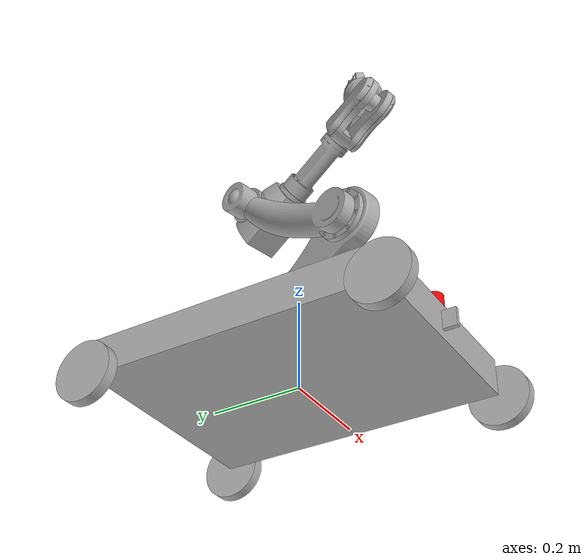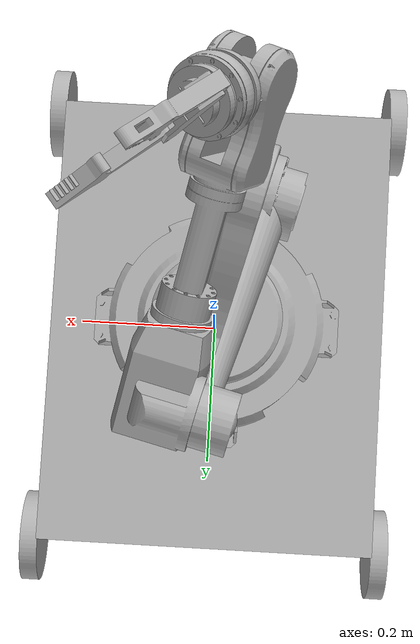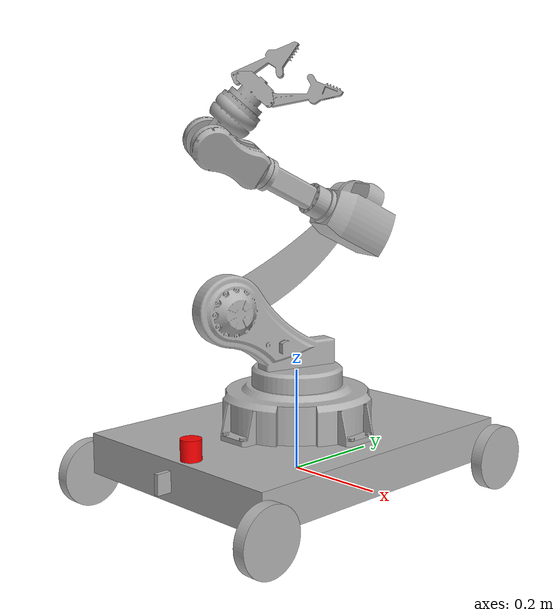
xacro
<?xml version="1.0" ?>
<robot name="assem1" xmlns:xacro="http://www.ros.org/wiki/xacro">

<xacro:include filename="$(find assem1_description)/urdf/materials.xacro" />
<xacro:include filename="$(find assem1_description)/urdf/assem1.gazebo" />
<xacro:include filename="$(find assem1_description)/urdf/lidar.xacro"/>
<xacro:include filename="$(find assem1_description)/urdf/camera.xacro"/>
<link name="base_link">
  <inertial>
    <origin xyz="-0.0030632357752009374 0.003088727731188072 0.045918953287975475" rpy="0 0 0"/>
    <mass value="192.92159999999998"/>
    <inertia ixx="6.687949" iyy="3.806986" izz="10.289152" ixy="-0.0" iyz="0.0" ixz="0.0"/>
  </inertial>
  <visual>
    <origin xyz="0 0 0" rpy="0 0 0"/>
    <geometry>
      <mesh filename="file://$(find assem1_description)/meshes/base_link.STL" scale="0.001 0.001 0.001"/>
    </geometry>
    <material name="silver"/>
  </visual>
  <collision>
    <origin xyz="0 0 0" rpy="0 0 0"/>
    <geometry>
      <mesh filename="file://$(find assem1_description)/meshes/base_link.STL" scale="0.001 0.001 0.001"/>
    </geometry>
  </collision>
</link>

<joint name="base_footprint_joint" type="fixed">
  <parent link="base_link"/>
  <child link="base_footprint"/>
  <origin xyz="0 0 0" rpy="0.0 0.0 0.0"/>
</joint>

<link name="base_footprint">
</link>

<link name="Part2_1">
  <inertial>
    <origin xyz="-0.010911311293864655 -0.05529969992583282 0.06139654458639404" rpy="0 0 0"/>
    <mass value="17.701233959851926"/>
    <inertia ixx="0.178207" iyy="0.09469" izz="0.124657" ixy="-0.017913" iyz="0.0684" ixz="0.013711"/>
  </inertial>
  <visual>
    <origin xyz="0.003063 -0.003089 -0.190919" rpy="0 0 0"/>
    <geometry>
      <mesh filename="file://$(find assem1_description)/meshes/Part2_1.STL" scale="0.001 0.001 0.001"/>
    </geometry>
    <material name="silver"/>
  </visual>
  <collision>
    <origin xyz="0.003063 -0.003089 -0.190919" rpy="0 0 0"/>
    <geometry>
      <mesh filename="file://$(find assem1_description)/meshes/Part2_1.STL" scale="0.001 0.001 0.001"/>
    </geometry>
  </collision>
</link>

<link name="Part3_1">
  <inertial>
    <origin xyz="-0.005182507077487054 0.12838435386256494 0.0717552847232073" rpy="0 0 0"/>
    <mass value="7.22749176500749"/>
    <inertia ixx="0.137207" iyy="0.050406" izz="0.100334" ixy="-0.022977" iyz="-0.059968" ixz="-0.014619"/>
  </inertial>
  <visual>
    <origin xyz="0.038331 0.142706 -0.330919" rpy="0 0 0"/>
    <geometry>
      <mesh filename="file://$(find assem1_description)/meshes/Part3_1.STL" scale="0.001 0.001 0.001"/>
    </geometry>
    <material name="silver"/>
  </visual>
  <collision>
    <origin xyz="0.038331 0.142706 -0.330919" rpy="0 0 0"/>
    <geometry>
      <mesh filename="file://$(find assem1_description)/meshes/Part3_1.STL" scale="0.001 0.001 0.001"/>
    </geometry>
  </collision>
</link>

<link name="Part4_1">
  <inertial>
    <origin xyz="0.011724639975586672 -0.06227515847861945 -0.015690080281824947" rpy="0 0 0"/>
    <mass value="11.236916808319004"/>
    <inertia ixx="0.064352" iyy="0.024344" izz="0.055655" ixy="-0.009096" iyz="0.017391" ixz="0.004684"/>
  </inertial>
  <visual>
    <origin xyz="-0.030387 -0.141374 -0.523471" rpy="0 0 0"/>
    <geometry>
      <mesh filename="file://$(find assem1_description)/meshes/Part4_1.STL" scale="0.001 0.001 0.001"/>
    </geometry>
    <material name="silver"/>
  </visual>
  <collision>
    <origin xyz="-0.030387 -0.141374 -0.523471" rpy="0 0 0"/>
    <geometry>
      <mesh filename="file://$(find assem1_description)/meshes/Part4_1.STL" scale="0.001 0.001 0.001"/>
    </geometry>
  </collision>
</link>

<link name="Part5_1">
  <inertial>
    <origin xyz="-0.019119574882464244 -0.07904125203019088 0.04076278935412059" rpy="0 0 0"/>
    <mass value="4.564272686214756"/>
    <inertia ixx="0.011004" iyy="0.006391" izz="0.010732" ixy="-0.000969" iyz="0.002857" ixz="0.001086"/>
  </inertial>
  <visual>
    <origin xyz="-0.004873 0.081066 -0.584516" rpy="0 0 0"/>
    <geometry>
      <mesh filename="file://$(find assem1_description)/meshes/Part5_1.STL" scale="0.001 0.001 0.001"/>
    </geometry>
    <material name="silver"/>
  </visual>
  <collision>
    <origin xyz="-0.004873 0.081066 -0.584516" rpy="0 0 0"/>
    <geometry>
      <mesh filename="file://$(find assem1_description)/meshes/Part5_1.STL" scale="0.001 0.001 0.001"/>
    </geometry>
  </collision>
</link>

<link name="Part7_1">
  <inertial>
    <origin xyz="0.006669159719989541 0.03655129702098897 0.05115457936445622" rpy="0 0 0"/>
    <mass value="2.6622847012153508"/>
    <inertia ixx="0.00266" iyy="0.002593" izz="0.002307" ixy="-0.000183" iyz="-0.00031" ixz="-0.000278"/>
  </inertial>
  <visual>
    <origin xyz="0.003681 0.20663 -0.638292" rpy="0 0 0"/>
    <geometry>
      <mesh filename="file://$(find assem1_description)/meshes/Part7_1.STL" scale="0.001 0.001 0.001"/>
    </geometry>
    <material name="silver"/>
  </visual>
  <collision>
    <origin xyz="0.003681 0.20663 -0.638292" rpy="0 0 0"/>
    <geometry>
      <mesh filename="file://$(find assem1_description)/meshes/Part7_1.STL" scale="0.001 0.001 0.001"/>
    </geometry>
  </collision>
</link>

<link name="Part8_1">
  <inertial>
    <origin xyz="0.002854033391193094 0.0030028641318119997 0.004726285016126597" rpy="0 0 0"/>
    <mass value="0.5986212262936281"/>
    <inertia ixx="0.000282" iyy="0.000294" izz="0.000287" ixy="-9e-06" iyz="1.8e-05" ixz="2.5e-05"/>
  </inertial>
  <visual>
    <origin xyz="-0.023282 0.148493 -0.723368" rpy="0 0 0"/>
    <geometry>
      <mesh filename="file://$(find assem1_description)/meshes/Part8_1.STL" scale="0.001 0.001 0.001"/>
    </geometry>
    <material name="silver"/>
  </visual>
  <collision>
    <origin xyz="-0.023282 0.148493 -0.723368" rpy="0 0 0"/>
    <geometry>
      <mesh filename="file://$(find assem1_description)/meshes/Part8_1.STL" scale="0.001 0.001 0.001"/>
    </geometry>
  </collision>
</link>

<link name="Part9_1">
  <inertial>
    <origin xyz="0.043545764516277764 0.03738600757521744 0.01633233444478477" rpy="0 0 0"/>
    <mass value="0.36097891893203876"/>
    <inertia ixx="0.00023" iyy="0.000306" izz="0.000441" ixy="-0.000207" iyz="-4.8e-05" ixz="-5.4e-05"/>
  </inertial>
  <visual>
    <origin xyz="-0.059773 0.120751 -0.715132" rpy="0 0 0"/>
    <geometry>
      <mesh filename="file://$(find assem1_description)/meshes/Part9_1.STL" scale="0.001 0.001 0.001"/>
    </geometry>
    <material name="silver"/>
  </visual>
  <collision>
    <origin xyz="-0.059773 0.120751 -0.715132" rpy="0 0 0"/>
    <geometry>
      <mesh filename="file://$(find assem1_description)/meshes/Part9_1.STL" scale="0.001 0.001 0.001"/>
    </geometry>
  </collision>
</link>

<link name="Part9_2">
  <inertial>
    <origin xyz="-0.5557827107504087 -0.159452899680161 0.5477674898337425" rpy="0 0 0"/>
    <mass value="0.36097891893203876"/>
    <inertia ixx="0.000272" iyy="0.000319" izz="0.000385" ixy="-0.000181" iyz="-0.000104" ixz="-0.000113"/>
  </inertial>
  <visual>
    <origin xyz="-0.019773 0.1530751 -0.765132" rpy="0 0 0"/>
    <geometry>
      <mesh filename="file://$(find assem1_description)/meshes/Part9_2.STL" scale="0.001 0.001 0.001"/>
    </geometry>
    <material name="silver"/>
  </visual>
  <collision>
    <origin xyz="-0.606893 -0.042637 -0.23854" rpy="0 0 0"/>
    <geometry>
      <mesh filename="file://$(find assem1_description)/meshes/Part9_2.STL" scale="0.001 0.001 0.001"/>
    </geometry>
  </collision>
</link>

<link name="Part1_1">
  <inertial>
    <origin xyz="-2.3577520094197196e-07 -2.7226882862553883e-07 0.039626993198063926" rpy="0 0 0"/>
    <mass value="43.256899010092134"/>
    <inertia ixx="0.25538" iyy="0.25538" izz="0.462403" ixy="-0.0" iyz="0.0" ixz="-0.0"/>
  </inertial>
  <visual>
    <origin xyz="0.003063 -0.003089 -0.085919" rpy="0 0 0"/>
    <geometry>
      <mesh filename="file://$(find assem1_description)/meshes/Part1_1.STL" scale="0.001 0.001 0.001"/>
    </geometry>
    <material name="silver"/>
  </visual>
  <collision>
    <origin xyz="0.003063 -0.003089 -0.085919" rpy="0 0 0"/>
    <geometry>
      <mesh filename="file://$(find assem1_description)/meshes/Part1_1.STL" scale="0.001 0.001 0.001"/>
    </geometry>
  </collision>
</link>

<link name="wheel_v1_1">
  <inertial>
    <origin xyz="0.01249976422479887 -2.722688113299121e-07 -4.671202449065687e-08" rpy="0 0 0"/>
    <mass value="2.604871183678062"/>
    <inertia ixx="0.005503" iyy="0.002887" izz="0.002887" ixy="0.0" iyz="0.0" ixz="-0.0"/>
  </inertial>
  <visual>
    <origin xyz="-0.236937 0.316911 -0.005919" rpy="0 0 0"/>
    <geometry>
      <mesh filename="file://$(find assem1_description)/meshes/wheel_v1_1.STL" scale="0.001 0.001 0.001"/>
    </geometry>
    <material name="silver"/>
  </visual>
  <collision>
    <origin xyz="-0.236937 0.316911 -0.005919" rpy="0 0 0"/>
    <geometry>
      <mesh filename="file://$(find assem1_description)/meshes/wheel_v1_1.STL" scale="0.001 0.001 0.001"/>
    </geometry>
  </collision>
</link>

<link name="wheel_v1__1__1">
  <inertial>
    <origin xyz="0.01249976422479887 -2.7226881249564627e-07 -4.6712024579127764e-08" rpy="0 0 0"/>
    <mass value="2.604871183678062"/>
    <inertia ixx="0.005503" iyy="0.002887" izz="0.002887" ixy="-0.0" iyz="0.0" ixz="-0.0"/>
  </inertial>
  <visual>
    <origin xyz="-0.236937 -0.323089 -0.005919" rpy="0 0 0"/>
    <geometry>
      <mesh filename="file://$(find assem1_description)/meshes/wheel_v1__1__1.STL" scale="0.001 0.001 0.001"/>
    </geometry>
    <material name="silver"/>
  </visual>
  <collision>
    <origin xyz="-0.236937 -0.323089 -0.005919" rpy="0 0 0"/>
    <geometry>
      <mesh filename="file://$(find assem1_description)/meshes/wheel_v1__1__1.STL" scale="0.001 0.001 0.001"/>
    </geometry>
  </collision>
</link>

<link name="wheel_v1__2__1">
  <inertial>
    <origin xyz="-0.012500235775200791 -2.7226881249564627e-07 -4.6712024568719424e-08" rpy="0 0 0"/>
    <mass value="2.604871183678062"/>
    <inertia ixx="0.005503" iyy="0.002887" izz="0.002887" ixy="-0.0" iyz="0.0" ixz="0.0"/>
  </inertial>
  <visual>
    <origin xyz="0.243063 -0.323089 -0.005919" rpy="0 0 0"/>
    <geometry>
      <mesh filename="file://$(find assem1_description)/meshes/wheel_v1__2__1.STL" scale="0.001 0.001 0.001"/>
    </geometry>
    <material name="silver"/>
  </visual>
  <collision>
    <origin xyz="0.243063 -0.323089 -0.005919" rpy="0 0 0"/>
    <geometry>
      <mesh filename="file://$(find assem1_description)/meshes/wheel_v1__2__1.STL" scale="0.001 0.001 0.001"/>
    </geometry>
  </collision>
</link>

<link name="wheel_v1__3__1">
  <inertial>
    <origin xyz="-0.012500235775200791 -2.722688113299121e-07 -4.67120244264721e-08" rpy="0 0 0"/>
    <mass value="2.604871183678062"/>
    <inertia ixx="0.005503" iyy="0.002887" izz="0.002887" ixy="0.0" iyz="0.0" ixz="0.0"/>
  </inertial>
  <visual>
    <origin xyz="0.243063 0.316911 -0.005919" rpy="0 0 0"/>
    <geometry>
      <mesh filename="file://$(find assem1_description)/meshes/wheel_v1__3__1.STL" scale="0.001 0.001 0.001"/>
    </geometry>
    <material name="silver"/>
  </visual>
  <collision>
    <origin xyz="0.243063 0.316911 -0.005919" rpy="0 0 0"/>
    <geometry>
      <mesh filename="file://$(find assem1_description)/meshes/wheel_v1__3__1.STL" scale="0.001 0.001 0.001"/>
    </geometry>
  </collision>
</link>

<joint name="Revolute 1" type="continuous">
  <origin xyz="0.0 0.0 0.105" rpy="0 0 0"/>
  <parent link="Part1_1"/>
  <child link="Part2_1"/>
  <axis xyz="-0.0 -0.0 1.0"/>
</joint>

<joint name="Revolute 2" type="revolute">
  <origin xyz="-0.035268 -0.145795 0.14" rpy="0 0 0"/>
  <parent link="Part2_1"/>
  <child link="Part3_1"/>
  <axis xyz="-0.971968 0.235115 0.0"/>
  <limit upper="1.047198" lower="-1.745329" effort="100" velocity="100"/>
</joint>

<joint name="Revolute 3" type="revolute">
  <origin xyz="0.068718 0.28408 0.192552" rpy="0 0 0"/>
  <parent link="Part3_1"/>
  <child link="Part4_1"/>
  <axis xyz="0.971968 -0.235115 -0.0"/>
  <limit upper="1.047198" lower="-1.047198" effort="100" velocity="100"/>
</joint>

<joint name="Revolute 4" type="continuous">
  <origin xyz="-0.025514 -0.22244 0.061045" rpy="0 0 0"/>
  <parent link="Part4_1"/>
  <child link="Part5_1"/>
  <axis xyz="-0.210187 -0.868915 0.448116"/>
</joint>

<joint name="Revolute 5" type="revolute">
  <origin xyz="-0.008554 -0.125564 0.053776" rpy="0 0 0"/>
  <parent link="Part5_1"/>
  <child link="Part7_1"/>
  <axis xyz="-0.880921 0.36712 0.298667"/>
  <limit upper="1.745329" lower="-1.745329" effort="100" velocity="100"/>
</joint>

<joint name="Revolute 6" type="continuous">
  <origin xyz="0.026963 0.058137 0.085076" rpy="0 0 0"/>
  <parent link="Part7_1"/>
  <child link="Part8_1"/>
  <axis xyz="0.454085 0.47782 0.751993"/>
</joint>

<joint name="Revolute 7" type="revolute">
  <origin xyz="0.036491 0.027742 -0.008236" rpy="0 0 0"/>
  <parent link="Part8_1"/>
  <child link="Part9_1"/>
  <axis xyz="0.617894 -0.776961 0.120574"/>
  <limit upper="0.349066" lower="-0.349066" effort="100" velocity="100"/>
</joint>

<joint name="Revolute 8" type="revolute">
  <origin xyz="-0.01 -0.01 0.04" rpy="0 0 0"/>
  <parent link="Part8_1"/>
  <child link="Part9_2"/>
  <axis xyz="0.617894 -0.776961 0.120574"/>
  <limit upper="1.396263" lower="0.0" effort="100" velocity="100"/>
</joint>

<joint name="Rigid 9" type="fixed">
  <origin xyz="-0.003063 0.003089 0.085919" rpy="0 0 0"/>
  <parent link="base_link"/>
  <child link="Part1_1"/>
</joint>

<joint name="Revolute 10" type="continuous">
  <origin xyz="0.236937 -0.316911 0.005919" rpy="0 0 0"/>
  <parent link="base_link"/>
  <child link="wheel_v1_1"/>
  <axis xyz="1.0 -0.0 -0.0"/>
</joint>

<joint name="Revolute 11" type="continuous">
  <origin xyz="0.236937 0.323089 0.005919" rpy="0 0 0"/>
  <parent link="base_link"/>
  <child link="wheel_v1__1__1"/>
  <axis xyz="1.0 -0.0 -0.0"/>
</joint>

<joint name="Revolute 12" type="continuous">
  <origin xyz="-0.243063 0.323089 0.005919" rpy="0 0 0"/>
  <parent link="base_link"/>
  <child link="wheel_v1__2__1"/>
  <axis xyz="1.0 0.0 0.0"/>
</joint>

<joint name="Revolute 13" type="continuous">
  <origin xyz="-0.243063 -0.316911 0.005919" rpy="0 0 0"/>
  <parent link="base_link"/>
  <child link="wheel_v1__3__1"/>
  <axis xyz="1.0 0.0 0.0"/>
</joint>

</robot>

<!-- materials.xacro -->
<robot xmlns:xacro="http://www.ros.org/wiki/xacro" >

<material name="silver">
  <color rgba="0.700 0.700 0.700 1.000"/>
</material>

<material name="red">
  <color rgba="1.0 0.0 0.0 1.0"/>
</material>

</robot>

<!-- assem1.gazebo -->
<robot xmlns:xacro="http://www.ros.org/wiki/xacro">

  <xacro:property name="body_color" value="Gazebo/Silver" />

  <gazebo>
    <plugin name="diff_drive" filename="libgazebo_ros_diff_drive.so">

      <!-- Wheel Information -->
      <num_wheel_pairs>2</num_wheel_pairs>
      <left_joint>Revolute 10</left_joint>
      <left_joint>Revolute 11</left_joint>
      <right_joint>Revolute 12</right_joint>
      <right_joint>Revolute 13</right_joint>
      <wheel_separation>0.64</wheel_separation>
      <wheel_diameter>0.1</wheel_diameter>

      <!-- Limits -->
      <max_wheel_torque>2000</max_wheel_torque>
      <max_wheel_acceleration>100.0</max_wheel_acceleration>

      <!-- Output -->
      <odometry_frame>odom</odometry_frame>
      <robot_base_frame>base_link</robot_base_frame>

      <publish_odom>true</publish_odom>
      <publish_odom_tf>true</publish_odom_tf>
      <publish_wheel_tf>true</publish_wheel_tf>

    </plugin>
  </gazebo>

  <gazebo reference="base_link">
    <material>${body_color}</material>
    <mu1>0.2</mu1>
    <mu2>0.2</mu2>
    <selfCollide>true</selfCollide>
    <gravity>true</gravity>
  </gazebo>

  <gazebo reference="Part2_1">
    <material>${body_color}</material>
    <mu1>0.2</mu1>
    <mu2>0.2</mu2>
    <selfCollide>true</selfCollide>
  </gazebo>

  <gazebo reference="Part3_1">
    <material>${body_color}</material>
    <mu1>0.2</mu1>
    <mu2>0.2</mu2>
    <selfCollide>true</selfCollide>
  </gazebo>

  <gazebo reference="Part4_1">
    <material>${body_color}</material>
    <mu1>0.2</mu1>
    <mu2>0.2</mu2>
    <selfCollide>true</selfCollide>
  </gazebo>

  <gazebo reference="Part5_1">
    <material>${body_color}</material>
    <mu1>0.2</mu1>
    <mu2>0.2</mu2>
    <selfCollide>true</selfCollide>
  </gazebo>

  <gazebo reference="Part7_1">
    <material>${body_color}</material>
    <mu1>0.2</mu1>
    <mu2>0.2</mu2>
    <selfCollide>true</selfCollide>
  </gazebo>

  <gazebo reference="Part8_1">
    <material>${body_color}</material>
    <mu1>0.2</mu1>
    <mu2>0.2</mu2>
    <selfCollide>true</selfCollide>
  </gazebo>

  <gazebo reference="Part9_1">
    <material>${body_color}</material>
    <mu1>0.2</mu1>
    <mu2>0.2</mu2>
    <selfCollide>true</selfCollide>
  </gazebo>

  <gazebo reference="Part9_2">
    <material>${body_color}</material>
    <mu1>0.2</mu1>
    <mu2>0.2</mu2>
    <selfCollide>true</selfCollide>
  </gazebo>

  <gazebo reference="Part1_1">
    <material>${body_color}</material>
    <mu1>0.2</mu1>
    <mu2>0.2</mu2>
    <selfCollide>true</selfCollide>
  </gazebo>

  <gazebo reference="wheel_v1_1">
    <material>${body_color}</material>
    <mu1>0.2</mu1>
    <mu2>0.2</mu2>
    <selfCollide>true</selfCollide>
  </gazebo>

  <gazebo reference="wheel_v1__1__1">
    <material>${body_color}</material>
    <mu1>0.2</mu1>
    <mu2>0.2</mu2>
    <selfCollide>true</selfCollide>
  </gazebo>

  <gazebo reference="wheel_v1__2__1">
    <material>${body_color}</material>
    <mu1>0.2</mu1>
    <mu2>0.2</mu2>
    <selfCollide>true</selfCollide>
  </gazebo>

  <gazebo reference="wheel_v1__3__1">
    <material>${body_color}</material>
    <mu1>0.2</mu1>
    <mu2>0.2</mu2>
    <selfCollide>true</selfCollide>
  </gazebo>

  <gazebo reference="camera_1">
    <material>${body_color}</material>
    <mu1>0.2</mu1>
    <mu2>0.2</mu2>
    <selfCollide>true</selfCollide>
  </gazebo>

  <gazebo reference="lidar_1">
    <material>Gazebo/Red</material>
    <mu1>0.2</mu1>
    <mu2>0.2</mu2>
    <selfCollide>true</selfCollide>
  </gazebo>

</robot>

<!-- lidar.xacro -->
<robot xmlns:xacro="http://www.ros.org/wiki/xacro" >

    <joint name="Rigid 17" type="fixed">
        <origin xyz="-0.006126 -0.313823 0.091838" rpy="0 0 -0.75"/>
        <parent link="base_link"/>
        <child link="lidar_1"/>
      </joint>

    <link name="lidar_1">
        <inertial>
          <origin xyz="0.003062764224799069 0.036911727731188615 0.014080953287975456" rpy="0 0 0"/>
          <mass value="0.3945840372908781"/>
          <inertia ixx="9.2e-05" iyy="9.2e-05" izz="7.9e-05" ixy="-0.0" iyz="-0.0" ixz="0.0"/>
        </inertial>
        <visual>
          <origin xyz="0.006126 0.313823 -0.091838" rpy="0 0 0"/>
          <geometry>
            <mesh filename="file://$(find assem1_description)/meshes/lidar_1.STL" scale="0.001 0.001 0.001"/>
          </geometry>
          <material name="red"/>
        </visual>
        <collision>
          <origin xyz="0.006126 0.313823 -0.091838" rpy="0 0 0"/>
          <geometry>
            <mesh filename="file://$(find assem1_description)/meshes/lidar_1.STL" scale="0.001 0.001 0.001"/>
          </geometry>
        </collision>
      </link>

    <gazebo reference="lidar_1">
        <material>Gazebo/Red</material>

        <sensor name="laser" type="ray">
            <pose>true</pose>
            <visualize>true</visualize>
            <update_rate>10</update_rate>
            <ray>
                <scan>
                    <horizontal>
                        <samples>360</samples>
                        <resolution>1</resolution>
                        <min_angle>-3.14</min_angle>
                        <max_angle>1.57</max_angle>
                    </horizontal>
                </scan>
                <range>
                    <min>0.3</min>
                    <max>12</max>
                    <resolution>0.01</resolution>
                </range>
            </ray>
            <plugin name="laser_controller" filename="libgazebo_ros_ray_sensor.so">
                <ros>
                    <argument>~/out:=scan</argument>
                </ros>
                <output_type>sensor_msgs/LaserScan</output_type>
                <frame_name>lidar_1</frame_name>
            </plugin>
        </sensor>
    </gazebo>
</robot>

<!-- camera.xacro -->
<robot xmlns:xacro="http://www.ros.org/wiki/xacro" >

    <joint name="Rigid 16" type="fixed">
        <origin xyz="-0.003063 -0.316911 0.045919" rpy="0 0 ${-pi/2}"/>
        <parent link="base_link"/>
        <child link="camera_1"/>
    </joint>

    <link name="camera_1">
    <inertial>
        <origin xyz="-2.3577520093243098e-07 -0.005000272268811223 -4.671202445682976e-08" rpy="0 0 0"/>
        <mass value="0.18839999999999998"/>
        <inertia ixx="2.7e-05" iyy="8.2e-05" izz="5.8e-05" ixy="-0.0" iyz="-0.0" ixz="0.0"/>
    </inertial>
    <visual>
        <origin xyz="0.003063 0.316911 -0.045919" rpy="0 0 0"/>
        <geometry>
        <mesh filename="file://$(find assem1_description)/meshes/camera_1.STL" scale="0.001 0.001 0.001"/>
        </geometry>
        <material name="silver"/>
    </visual>
    <collision>
        <origin xyz="0.003063 0.316911 -0.045919" rpy="0 0 0"/>
        <geometry>
        <mesh filename="file://$(find assem1_description)/meshes/camera_1.STL" scale="0.001 0.001 0.001"/>
        </geometry>
    </collision>
    </link>

    <link name="camera_link_optical">
    </link>

    <joint name="camera_optical_joint" type="fixed">
        <origin xyz="0 0 0" rpy="${-pi/2} 0 ${-pi/2}"/>
        <parent link="camera_1"/>
        <child link="camera_link_optical"/>
    </joint>

    <gazebo reference="camera_1">
        <material>Gazebo/Red</material>

        <sensor name="camera" type="camera">
            <pose>0 0 0</pose>
            <visualize>true</visualize>
            <update_rate>10</update_rate>
            <camera>
                <horizontal_fov>1.089</horizontal_fov>
                <image>
                    <format>R8G8B8</format>
                    <width>640</width>
                    <height>480</height>
                </image>
                <clip>
                    <near>0.05</near>
                    <far>8.0</far>
                </clip>
            </camera>
            <plugin name="camera_controller" filename="libgazebo_ros_camera.so">
                <frame_name>camera_link_optical</frame_name>
            </plugin>
        </sensor>
    </gazebo>
</robot>
